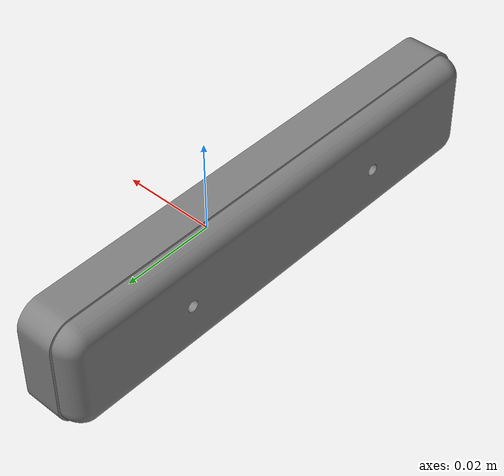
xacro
<?xml version="1.0"?>
<robot name="realsense2_camera" xmlns:xacro="http://ros.org/wiki/xacro">
  <xacro:include filename="$(find realsense2_description)/urdf/_t265.urdf.xacro" />

<link name="camera_link" />
<sensor_t265 parent="camera_link" name="camera_visual">
    <origin xyz="0 0 0" rpy="0 0 0"/>
</sensor_t265>
</robot>

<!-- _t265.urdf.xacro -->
<robot name="sensor_t265" xmlns:xacro="http://ros.org/wiki/xacro">
    <xacro:include filename="$(find realsense2_description)/urdf/_materials.urdf.xacro" />

    <xacro:macro name="sensor_t265" params="parent *origin name:=camera use_nominal_extrinsics:=false">

        <joint name="${name}_joint" type="fixed">
          <xacro:insert_block name="origin" />
          <parent link="${parent}"/>
          <child link="${name}_link" />
        </joint>

        <link name="${name}_link">
            <visual>
                <origin xyz="0 0 0" rpy = "0 0 0"/>
                <geometry>
                    <mesh filename="package://realsense2_description/meshes/t265.stl" />
                </geometry>
                <material name="grey">
                    <color rgba="0.5 0.5 0.5 1"/>
                </material>
            </visual>
        </link>
    </xacro:macro>
</robot>
